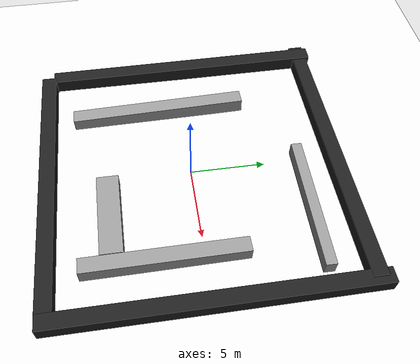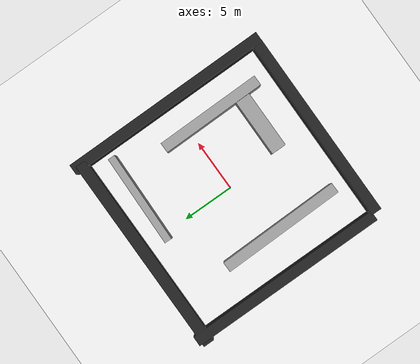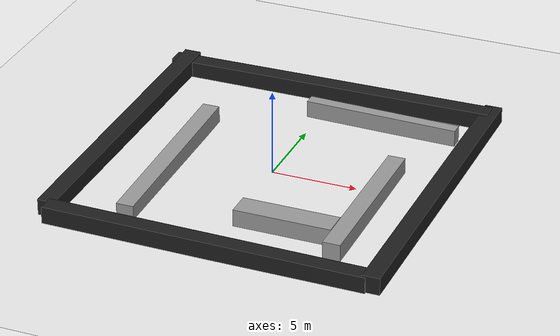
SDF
<sdf version="1.7">
 <world name="default">
  <plugin name="gazebo_ros_state" filename="libgazebo_ros_state.so">
   <ros><namespace>/gazebo</namespace></ros>
   <update_rate>1.0</update_rate>
  </plugin>
  <light name="sun" type="directional">
   <pose>0 0 10 0 -0 0</pose>
   <diffuse>0.8 0.8 0.8 1</diffuse>
   <specular>0.2 0.2 0.2 1</specular>
   <attenuation>
    <range>1000</range>
    <constant>0.9</constant>
    <linear>0.01</linear>
    <quadratic>0.001</quadratic>
   </attenuation>
   <direction>-0.5 0.1 -0.9</direction>
   <spot><inner_angle>0</inner_angle><outer_angle>0</outer_angle><falloff>0</falloff></spot>
  </light>
  <model name="ground_plane">
   <static>1</static>
   <link name="link">
    <collision name="collision">
     <geometry><plane><normal>0 0 1</normal><size>100 100</size></plane></geometry>
     <surface><friction><ode><mu>100</mu><mu2>50</mu2></ode></friction></surface>
    </collision>
    <visual name="visual">
     <cast_shadows>0</cast_shadows>
     <geometry><plane><normal>0 0 1</normal><size>100 100</size></plane></geometry>
     <material>
      <script><uri>file://media/materials/scripts/gazebo.material</uri><name>Gazebo/White</name></script>
     </material>
    </visual>
   </link>
  </model>
  <gravity>0 0 -9.8</gravity>
  <magnetic_field>6e-06 2.3e-05 -4.2e-05</magnetic_field>
  <atmosphere type="adiabatic"/>
  <physics name="default_physics" default="0" type="ode">
   <max_step_size>0.001</max_step_size>
   <real_time_factor>1</real_time_factor>
   <real_time_update_rate>1000</real_time_update_rate>
  </physics>
  <scene><ambient>0.4 0.4 0.4 1</ambient><background>0.7 0.7 0.7 1</background><shadows>1</shadows></scene>
  <spherical_coordinates>
   <surface_model>EARTH_WGS84</surface_model>
   <latitude_deg>0</latitude_deg>
   <longitude_deg>0</longitude_deg>
   <elevation>0</elevation>
   <heading_deg>0</heading_deg>
  </spherical_coordinates>
  <model name="unit_box">
   <static>1</static>
   <pose>-9.4653 0.680117 0.472601 0.006119 2.1e-05 -0.003317</pose>
   <link name="link">
    <inertial>
     <mass>1</mass>
     <inertia>
      <ixx>0.166667</ixx>
      <ixy>0</ixy>
      <ixz>0</ixz>
      <iyy>0.166667</iyy>
      <iyz>0</iyz>
      <izz>0.166667</izz>
     </inertia>
    </inertial>
    <collision name="collision"><geometry><box><size>1 19.428 1</size></box></geometry></collision>
    <visual name="visual">
     <geometry><box><size>1 19.428 1</size></box></geometry>
     <material>
      <script><name>Gazebo/FlatBlack</name><uri>file://media/materials/scripts/gazebo.material</uri></script>
     </material>
    </visual>
   </link>
  </model>
  <model name="unit_box_clone">
   <static>1</static>
   <pose>9.48131 0.321622 0.472594 -0.006121 -2.2e-05 0.001897</pose>
   <link name="link">
    <inertial>
     <mass>1</mass>
     <inertia>
      <ixx>0.166667</ixx>
      <ixy>0</ixy>
      <ixz>0</ixz>
      <iyy>0.166667</iyy>
      <iyz>0</iyz>
      <izz>0.166667</izz>
     </inertia>
    </inertial>
    <collision name="collision"><geometry><box><size>1 20.4776 1</size></box></geometry></collision>
    <visual name="visual">
     <geometry><box><size>1 20.4776 1</size></box></geometry>
     <material>
      <script><name>Gazebo/FlatBlack</name><uri>file://media/materials/scripts/gazebo.material</uri></script>
     </material>
    </visual>
   </link>
  </model>
  <model name="unit_box_clone_clone">
   <static>1</static>
   <pose>-0.071697 -9.41726 0.472603 -0.006119 -2.3e-05 -1.5749</pose>
   <link name="link">
    <inertial>
     <mass>1</mass>
     <inertia>
      <ixx>0.166667</ixx>
      <ixy>0</ixy>
      <ixz>0</ixz>
      <iyy>0.166667</iyy>
      <iyz>0</iyz>
      <izz>0.166667</izz>
     </inertia>
    </inertial>
    <collision name="collision"><geometry><box><size>1 20.6653 1</size></box></geometry></collision>
    <visual name="visual">
     <geometry><box><size>1 18.5396 1</size></box></geometry>
     <material>
      <script><name>Gazebo/FlatBlack</name><uri>file://media/materials/scripts/gazebo.material</uri></script>
     </material>
    </visual>
   </link>
  </model>
  <model name="unit_box_clone_clone_0">
   <static>1</static>
   <pose>-0.376706 9.67055 0.466932 0.00612 -1.9e-05 -1.56848</pose>
   <link name="link">
    <inertial>
     <mass>1</mass>
     <inertia>
      <ixx>0.166667</ixx>
      <ixy>0</ixy>
      <ixz>0</ixz>
      <iyy>0.166667</iyy>
      <iyz>0</iyz>
      <izz>0.166667</izz>
     </inertia>
    </inertial>
    <collision name="collision"><geometry><box><size>1 19.7285 1</size></box></geometry></collision>
    <visual name="visual">
     <geometry><box><size>1 19.7285 1</size></box></geometry>
     <material>
      <script><name>Gazebo/FlatBlack</name><uri>file://media/materials/scripts/gazebo.material</uri></script>
     </material>
    </visual>
   </link>
  </model>
  <model name="unit_box_0">
   <pose>3.84989 7.19445 0.471611 -0.000114 0.006293 -0.018099</pose>
   <link name="link">
    <inertial>
     <mass>1</mass>
     <inertia>
      <ixx>0.166667</ixx>
      <ixy>0</ixy>
      <ixz>0</ixz>
      <iyy>0.166667</iyy>
      <iyz>0</iyz>
      <izz>0.166667</izz>
     </inertia>
    </inertial>
    <collision name="collision"><geometry><box><size>9.05485 0.695224 1</size></box></geometry></collision>
    <visual name="visual">
     <geometry><box><size>9.05485 0.695224 1</size></box></geometry>
     <material>
      <script><name>Gazebo/Grey</name><uri>file://media/materials/scripts/gazebo.material</uri></script>
     </material>
    </visual>
   </link>
  </model>
  <model name="unit_box_0_clone">
   <pose>-5.54027 -1.62663 0.407498 0.015434 -0.00021 0.013583</pose>
   <link name="link">
    <inertial>
     <mass>1</mass>
     <inertia>
      <ixx>0.166667</ixx>
      <ixy>0</ixy>
      <ixz>0</ixz>
      <iyy>0.166667</iyy>
      <iyz>0</iyz>
      <izz>0.166667</izz>
     </inertia>
    </inertial>
    <collision name="collision"><geometry><box><size>0.999994 12.0357 1</size></box></geometry></collision>
    <visual name="visual">
     <geometry><box><size>0.999994 12.0357 1</size></box></geometry>
     <material>
      <script><name>Gazebo/Grey</name><uri>file://media/materials/scripts/gazebo.material</uri></script>
     </material>
    </visual>
   </link>
  </model>
  <model name="unit_box_0_clone_clone">
   <pose>6.37441 -2.39097 0.450785 -0.009564 7.4e-05 0.00779</pose>
   <link name="link">
    <inertial>
     <mass>1</mass>
     <inertia>
      <ixx>0.166667</ixx>
      <ixy>0</ixy>
      <ixz>0</ixz>
      <iyy>0.166667</iyy>
      <iyz>0</iyz>
      <izz>0.166667</izz>
     </inertia>
    </inertial>
    <collision name="collision"><geometry><box><size>0.999994 10.3212 1</size></box></geometry></collision>
    <visual name="visual">
     <geometry><box><size>0.999994 10.3212 1</size></box></geometry>
     <material>
      <script><name>Gazebo/Grey</name><uri>file://media/materials/scripts/gazebo.material</uri></script>
     </material>
    </visual>
   </link>
  </model>
  <model name="unit_box_0_clone_0">
   <pose>3.07201 -5.5226 0.5 -1e-06 0 -0.001145</pose>
   <link name="link">
    <inertial>
     <mass>1</mass>
     <inertia>
      <ixx>0.166667</ixx>
      <ixy>0</ixy>
      <ixz>0</ixz>
      <iyy>0.166667</iyy>
      <iyz>0</iyz>
      <izz>0.166667</izz>
     </inertia>
    </inertial>
    <collision name="collision"><geometry><box><size>5.61583 1.43839 1</size></box></geometry></collision>
    <visual name="visual">
     <geometry><box><size>5.61583 1.43839 1</size></box></geometry>
     <material>
      <script><name>Gazebo/Grey</name><uri>file://media/materials/scripts/gazebo.material</uri></script>
     </material>
    </visual>
   </link>
  </model>
  <model name="enclosure"><pose>-2.40807 5.14411 0 0 -0 0</pose></model>
  <model name="enclosure_0"><pose>-3.4834 6.62378 0 0 -0 0</pose></model>
  <model name="enclosure_1"/>
  <model name="enclosure_2"><pose>0.984729 5.94228 0 0 -0 0</pose></model>
  <model name="enclosure_3"><pose>-3.58464 1.19036 0 0 -0 0</pose></model>
 </world>
</sdf>
